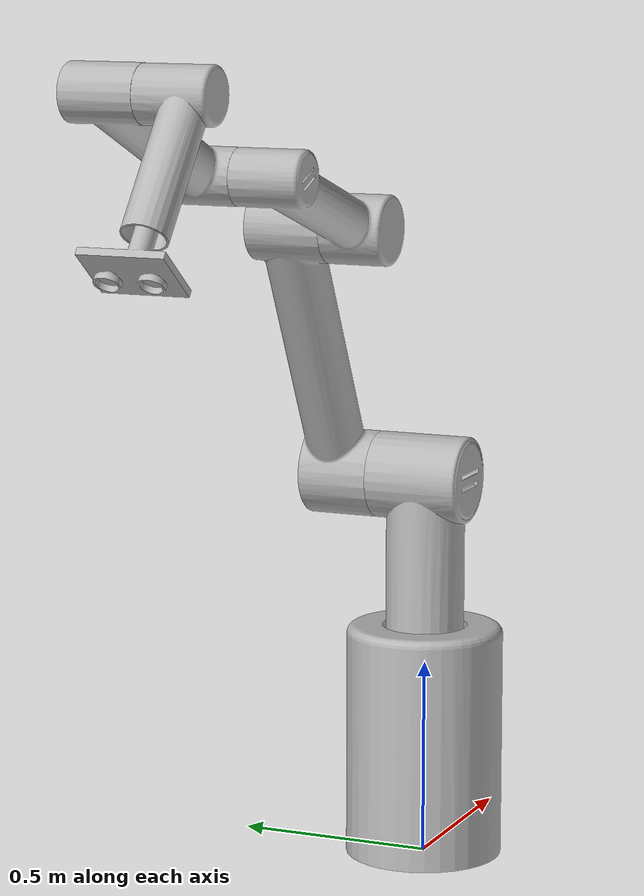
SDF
<sdf version="1.7">
  <model name="focus_one">
    <link name="base_link">
      <inertial>
        <pose>0 -0 0.379682 0 -0 0</pose>
        <mass>121.166</mass>
        <inertia>
          <ixx>6.35113</ixx>
          <ixy>6.70076e-32</ixy>
          <ixz>-1.22624e-31</ixz>
          <iyy>6.35113</iyy>
          <iyz>1.8453e-15</iyz>
          <izz>3.83548</izz>
        </inertia>
      </inertial>
      <collision name="base_link_collision">
        <pose>0 0 0 0 -0 0</pose>
        <geometry>
          <mesh>
            <scale>1 1 1</scale>
            <uri>package://focus_one_robot/meshes/visual/base_link.STL</uri>
          </mesh>
        </geometry>
      </collision>
      <visual name="base_link_visual">
        <pose>0 0 0 0 -0 0</pose>
        <geometry>
          <mesh>
            <scale>1 1 1</scale>
            <uri>package://focus_one_robot/meshes/visual/base_link.STL</uri>
          </mesh>
        </geometry>
      </visual>
    </link>
    <joint name="joint_1" type="revolute">
      <pose relative_to="base_link">0.000454 -0.001632 0.58343 0 -0 0</pose>
      <parent>base_link</parent>
      <child>link_1</child>
      <axis>
        <xyz>0 0 1</xyz>
        <limit>
          <lower>0</lower>
          <upper>6.28</upper>
          <effort>500</effort>
          <velocity>0.05</velocity>
        </limit>
        <dynamics>
          <spring_reference>0</spring_reference>
          <spring_stiffness>0</spring_stiffness>
        </dynamics>
      </axis>
    </joint>
    <link name="link_1">
      <pose relative_to="joint_1">0 0 0 0 -0 0</pose>
      <inertial>
        <pose>-0.002208 0.005563 0.296166 0 -0 0</pose>
        <mass>38.3317</mass>
        <inertia>
          <ixx>0.836298</ixx>
          <ixy>0.00104495</ixy>
          <ixz>0.000754815</ixz>
          <iyy>0.848009</iyy>
          <iyz>-0.00470293</iyz>
          <izz>0.318916</izz>
        </inertia>
      </inertial>
      <collision name="link_1_collision">
        <pose>0 0 0 0 -0 0</pose>
        <geometry>
          <mesh>
            <scale>1 1 1</scale>
            <uri>package://focus_one_robot/meshes/visual/link_1.STL</uri>
          </mesh>
        </geometry>
      </collision>
      <visual name="link_1_visual">
        <pose>0 0 0 0 -0 0</pose>
        <geometry>
          <mesh>
            <scale>1 1 1</scale>
            <uri>package://focus_one_robot/meshes/visual/link_1.STL</uri>
          </mesh>
        </geometry>
      </visual>
    </link>
    <joint name="joint_2" type="revolute">
      <pose relative_to="link_1">-0.000454 0.311632 0.4 0 -0 0</pose>
      <parent>link_1</parent>
      <child>link_2</child>
      <axis>
        <xyz>0 1 0</xyz>
        <limit>
          <lower>0.2</lower>
          <upper>2.07</upper>
          <effort>250</effort>
          <velocity>0.05</velocity>
        </limit>
        <dynamics>
          <spring_reference>0</spring_reference>
          <spring_stiffness>0</spring_stiffness>
        </dynamics>
      </axis>
    </joint>
    <link name="link_2">
      <pose relative_to="joint_2">0 0 0 0 -0 0</pose>
      <inertial>
        <pose>-0.160397 -0.077262 0.31781 0 -0 0</pose>
        <mass>107.699</mass>
        <inertia>
          <ixx>4.45301</ixx>
          <ixy>-0.0713932</ixy>
          <ixz>2.04008</ixz>
          <iyy>5.49921</iyy>
          <iyz>0.141459</iyz>
          <izz>1.4405</izz>
        </inertia>
      </inertial>
      <collision name="link_2_collision">
        <pose>0 0 0 0 -0 0</pose>
        <geometry>
          <mesh>
            <scale>1 1 1</scale>
            <uri>package://focus_one_robot/meshes/visual/link_2.STL</uri>
          </mesh>
        </geometry>
      </collision>
      <visual name="link_2_visual">
        <pose>0 0 0 0 -0 0</pose>
        <geometry>
          <mesh>
            <scale>1 1 1</scale>
            <uri>package://focus_one_robot/meshes/visual/link_2.STL</uri>
          </mesh>
        </geometry>
      </visual>
    </link>
    <joint name="joint_3" type="revolute">
      <pose relative_to="link_2">-0.334624 -0.35 0.663022 0 -0 0</pose>
      <parent>link_2</parent>
      <child>link_3</child>
      <axis>
        <xyz>0 1 0</xyz>
        <limit>
          <lower>1.25</lower>
          <upper>4.702</upper>
          <effort>250</effort>
          <velocity>0.05</velocity>
        </limit>
        <dynamics>
          <spring_reference>0</spring_reference>
          <spring_stiffness>0</spring_stiffness>
        </dynamics>
      </axis>
    </joint>
    <link name="link_3">
      <pose relative_to="joint_3">0 0 0 0 -0 0</pose>
      <inertial>
        <pose>-0.20176 0.067291 0.066413 0 -0 0</pose>
        <mass>25.5043</mass>
        <inertia>
          <ixx>0.217119</ixx>
          <ixy>0.0825447</ixy>
          <ixz>0.349345</ixz>
          <iyy>1.27276</iyy>
          <iyz>-0.0271716</iyz>
          <izz>1.16339</izz>
        </inertia>
      </inertial>
      <collision name="link_3_collision">
        <pose>0 0 0 0 -0 0</pose>
        <geometry>
          <mesh>
            <scale>1 1 1</scale>
            <uri>package://focus_one_robot/meshes/visual/link_3.STL</uri>
          </mesh>
        </geometry>
      </collision>
      <visual name="link_3_visual">
        <pose>0 0 0 0 -0 0</pose>
        <geometry>
          <mesh>
            <scale>1 1 1</scale>
            <uri>package://focus_one_robot/meshes/visual/link_3.STL</uri>
          </mesh>
        </geometry>
      </visual>
    </link>
    <joint name="joint_4" type="revolute">
      <pose relative_to="link_3">-0.50429 0.33 0.165999 0 -0 0</pose>
      <parent>link_3</parent>
      <child>link_4</child>
      <axis>
        <xyz>0 1 0</xyz>
        <limit>
          <lower>1.57</lower>
          <upper>1.57358</upper>
          <effort>250</effort>
          <velocity>0.025</velocity>
        </limit>
        <dynamics>
          <spring_reference>0</spring_reference>
          <spring_stiffness>0</spring_stiffness>
        </dynamics>
      </axis>
    </joint>
    <link name="link_4">
      <pose relative_to="joint_4">0 0 0 0 -0 0</pose>
      <inertial>
        <pose>-0.234407 -0.066663 0.100562 0 -0 0</pose>
        <mass>20.0585</mass>
        <inertia>
          <ixx>0.225734</ixx>
          <ixy>-0.0396503</ixy>
          <ixz>0.348001</ixz>
          <iyy>1.0281</iyy>
          <iyz>0.0170118</iyz>
          <izz>0.88761</izz>
        </inertia>
      </inertial>
      <collision name="link_4_collision">
        <pose>0 0 0 0 -0 0</pose>
        <geometry>
          <mesh>
            <scale>1 1 1</scale>
            <uri>package://focus_one_robot/meshes/visual/link_4.STL</uri>
          </mesh>
        </geometry>
      </collision>
      <visual name="link_4_visual">
        <pose>0 0 0 0 -0 0</pose>
        <geometry>
          <mesh>
            <scale>1 1 1</scale>
            <uri>package://focus_one_robot/meshes/visual/link_4.STL</uri>
          </mesh>
        </geometry>
      </visual>
    </link>
    <joint name="joint_5" type="revolute">
      <pose relative_to="link_4">-0.508232 -0.345 0.21804 0.662786 -0 1.5708</pose>
      <parent>link_4</parent>
      <child>link_5</child>
      <axis>
        <xyz>-1 0 0</xyz>
        <limit>
          <lower>0.4</lower>
          <upper>1.5</upper>
          <effort>250</effort>
          <velocity>0.025</velocity>
        </limit>
        <dynamics>
          <spring_reference>0</spring_reference>
          <spring_stiffness>0</spring_stiffness>
        </dynamics>
      </axis>
    </joint>
    <link name="link_5">
      <pose relative_to="joint_5">0 0 0 0 -0 0</pose>
      <inertial>
        <pose>0.058145 0 -0.069539 0 -0 0</pose>
        <mass>10.6191</mass>
        <inertia>
          <ixx>0.148878</ixx>
          <ixy>5.0282e-07</ixy>
          <ixz>0.00553326</ixz>
          <iyy>0.155691</iyy>
          <iyz>5.95667e-07</iyz>
          <izz>0.0357413</izz>
        </inertia>
      </inertial>
      <collision name="link_5_collision">
        <pose>0 0 0 0 -0 0</pose>
        <geometry>
          <mesh>
            <scale>1 1 1</scale>
            <uri>package://focus_one_robot/meshes/visual/link_5.STL</uri>
          </mesh>
        </geometry>
      </collision>
      <visual name="link_5_visual">
        <pose>0 0 0 0 -0 0</pose>
        <geometry>
          <mesh>
            <scale>1 1 1</scale>
            <uri>package://focus_one_robot/meshes/visual/link_5.STL</uri>
          </mesh>
        </geometry>
      </visual>
    </link>
    <joint name="joint_6" type="prismatic">
      <pose relative_to="link_5">0.065639 0 -0.442076 0 -0 0</pose>
      <parent>link_5</parent>
      <child>link_6</child>
      <axis>
        <xyz>0 0 -1</xyz>
        <limit>
          <lower>0</lower>
          <upper>0.18</upper>
          <effort>15000</effort>
          <velocity>0.1</velocity>
        </limit>
        <dynamics>
          <spring_reference>0</spring_reference>
          <spring_stiffness>0</spring_stiffness>
        </dynamics>
      </axis>
    </joint>
    <link name="link_6">
      <pose relative_to="joint_6">0 0 0 0 -0 0</pose>
      <inertial>
        <pose>0 -0 0.107106 0 -0 0</pose>
        <mass>10.2001</mass>
        <inertia>
          <ixx>0.0660468</ixx>
          <ixy>1.96445e-07</ixy>
          <ixz>1.84487e-07</ixz>
          <iyy>0.0728429</iyy>
          <iyz>-2.18561e-07</iyz>
          <izz>0.0269285</izz>
        </inertia>
      </inertial>
      <collision name="link_6_collision">
        <pose>0 0 0 0 -0 0</pose>
        <geometry>
          <mesh>
            <scale>1 1 1</scale>
            <uri>package://focus_one_robot/meshes/visual/link_6.STL</uri>
          </mesh>
        </geometry>
      </collision>
      <visual name="link_6_visual">
        <pose>0 0 0 0 -0 0</pose>
        <geometry>
          <mesh>
            <scale>1 1 1</scale>
            <uri>package://focus_one_robot/meshes/visual/link_6.STL</uri>
          </mesh>
        </geometry>
      </visual>
    </link>
  </model>
</sdf>
